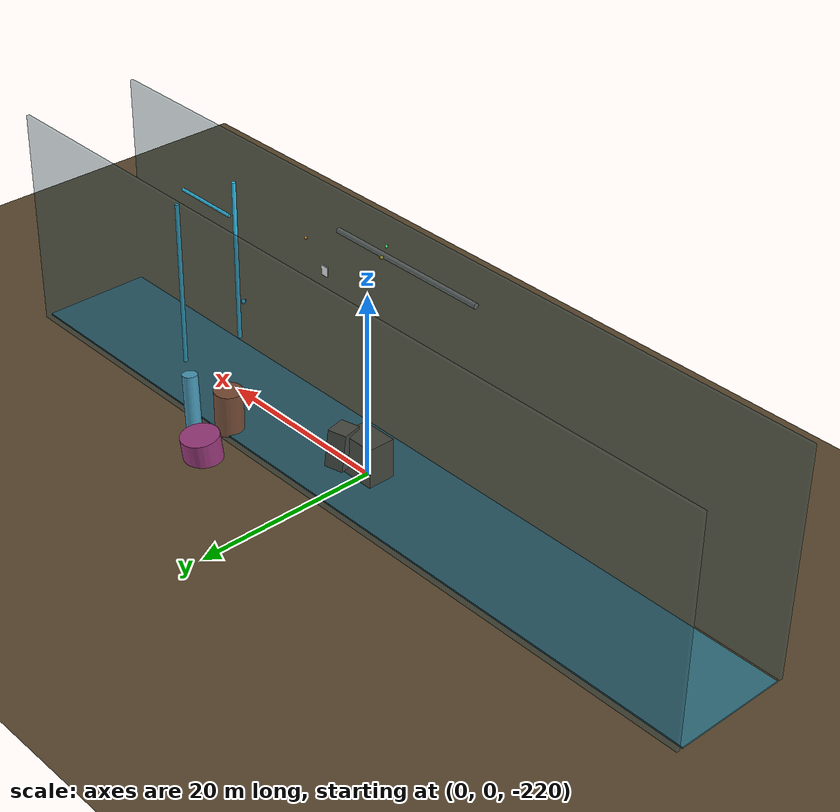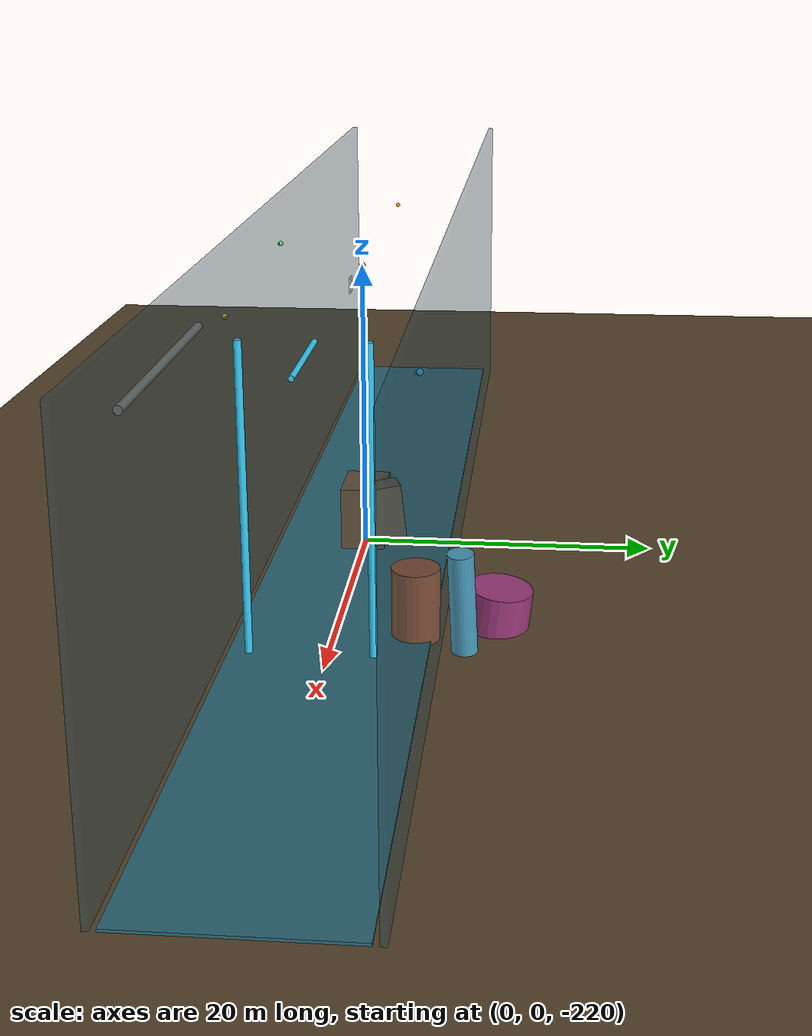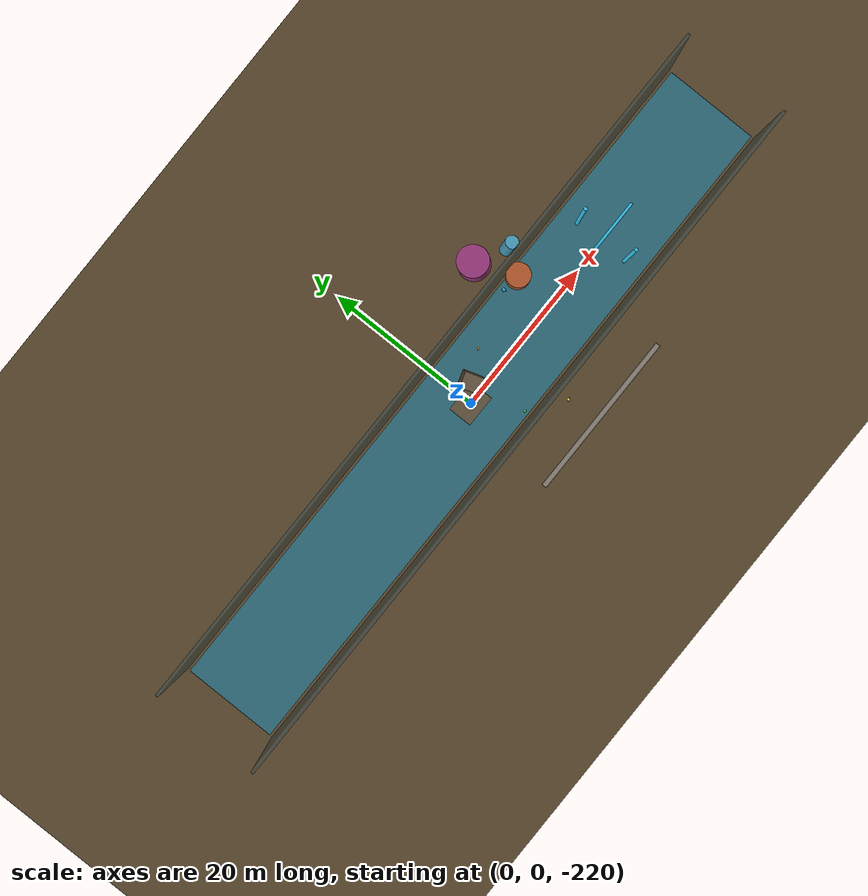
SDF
<sdf version="1.9">
 <world name="underwater_world">
  <model name="seafloor">
   <static>true</static>
   <link name="link">
    <pose>0 0 -220 0 0 0</pose>
    <collision name="collision">
     <geometry><plane><normal>0 0 1</normal><size>500 500</size></plane></geometry>
    </collision>
    <visual name="visual">
     <geometry><plane><normal>0 0 1</normal><size>500 500</size></plane></geometry>
     <material>
      <ambient>0.22 0.19 0.13 1</ambient>
      <diffuse>0.35 0.28 0.18 1</diffuse>
      <specular>0.03 0.03 0.02 1</specular>
     </material>
    </visual>
   </link>
  </model>
  <model name="navigation_lane">
   <static>true</static>
   <link name="link">
    <pose>0 0 -219.92 0 0 0</pose>
    <collision name="collision"><geometry><box><size>90 12 0.16</size></box></geometry></collision>
    <visual name="visual">
     <geometry><box><size>90 12 0.16</size></box></geometry>
     <material>
      <ambient>0.12 0.30 0.34 1</ambient>
      <diffuse>0.18 0.42 0.48 1</diffuse>
      <specular>0.05 0.08 0.08 1</specular>
     </material>
    </visual>
   </link>
  </model>
  <model name="guide_wall_port">
   <static>true</static>
   <pose>0 6.5 -208 0 0 0</pose>
   <link name="link">
    <collision name="collision"><geometry><box><size>90 0.35 24</size></box></geometry></collision>
    <visual name="visual">
     <geometry><box><size>90 0.35 24</size></box></geometry>
     <material>
      <ambient>0.16 0.24 0.28 0.40</ambient>
      <diffuse>0.20 0.34 0.38 0.40</diffuse>
      <specular>0.05 0.08 0.08 0.20</specular>
     </material>
     <transparency>0.55</transparency>
    </visual>
   </link>
  </model>
  <model name="guide_wall_starboard">
   <static>true</static>
   <pose>0 -6.5 -208 0 0 0</pose>
   <link name="link">
    <collision name="collision"><geometry><box><size>90 0.35 24</size></box></geometry></collision>
    <visual name="visual">
     <geometry><box><size>90 0.35 24</size></box></geometry>
     <material>
      <ambient>0.16 0.24 0.28 0.40</ambient>
      <diffuse>0.20 0.34 0.38 0.40</diffuse>
      <specular>0.05 0.08 0.08 0.20</specular>
     </material>
     <transparency>0.55</transparency>
    </visual>
   </link>
  </model>
  <model name="navigation_gate_exit">
   <static>true</static>
   <pose>24 0 -199 0 0 0</pose>
   <link name="link">
    <collision name="left_post">
     <pose>0 3.5 -9 0 0 0</pose>
     <geometry><cylinder><radius>0.22</radius><length>18</length></cylinder></geometry>
    </collision>
    <collision name="right_post">
     <pose>0 -3.5 -9 0 0 0</pose>
     <geometry><cylinder><radius>0.22</radius><length>18</length></cylinder></geometry>
    </collision>
    <collision name="top_beam">
     <pose>0 0 -1 0 1.5707963268 0</pose>
     <geometry><cylinder><radius>0.16</radius><length>7.4</length></cylinder></geometry>
    </collision>
    <visual name="left_post_visual">
     <pose>0 3.5 -9 0 0 0</pose>
     <geometry><cylinder><radius>0.22</radius><length>18</length></cylinder></geometry>
     <material><ambient>0.15 0.62 0.80 1</ambient><diffuse>0.20 0.78 0.95 1</diffuse></material>
    </visual>
    <visual name="right_post_visual">
     <pose>0 -3.5 -9 0 0 0</pose>
     <geometry><cylinder><radius>0.22</radius><length>18</length></cylinder></geometry>
     <material><ambient>0.15 0.62 0.80 1</ambient><diffuse>0.20 0.78 0.95 1</diffuse></material>
    </visual>
    <visual name="top_beam_visual">
     <pose>0 0 -1 0 1.5707963268 0</pose>
     <geometry><cylinder><radius>0.16</radius><length>7.4</length></cylinder></geometry>
     <material><ambient>0.15 0.62 0.80 1</ambient><diffuse>0.20 0.78 0.95 1</diffuse></material>
    </visual>
   </link>
  </model>
  <model name="rock_cluster_center">
   <static>true</static>
   <pose>0 0 -218 0 0 0</pose>
   <link name="link">
    <collision name="c1"><geometry><box><size>4 3 5</size></box></geometry></collision>
    <visual name="v1">
     <geometry><box><size>4 3 5</size></box></geometry>
     <material><ambient>0.25 0.22 0.18 1</ambient><diffuse>0.38 0.32 0.24 1</diffuse></material>
    </visual>
   </link>
  </model>
  <model name="rock_center_2">
   <static>true</static>
   <pose>2 1.5 -217 0.1 -0.05 0.3</pose>
   <link name="link">
    <collision name="c1"><geometry><box><size>2 2.5 4</size></box></geometry></collision>
    <visual name="v1">
     <geometry><box><size>2 2.5 4</size></box></geometry>
     <material><ambient>0.28 0.24 0.19 1</ambient><diffuse>0.40 0.34 0.26 1</diffuse></material>
    </visual>
   </link>
  </model>
  <model name="coral_reef_east_1">
   <static>true</static>
   <pose>15 5 -218 0 0 0.5</pose>
   <link name="link">
    <collision name="c1">
     <geometry><cylinder><radius>1.5</radius><length>5</length></cylinder></geometry>
    </collision>
    <visual name="v1">
     <geometry><cylinder><radius>1.5</radius><length>5</length></cylinder></geometry>
     <material>
      <ambient>0.55 0.25 0.12 1</ambient>
      <diffuse>0.72 0.35 0.18 1</diffuse>
      <specular>0.05 0.03 0.02 1</specular>
     </material>
    </visual>
   </link>
  </model>
  <model name="coral_reef_east_2">
   <static>true</static>
   <pose>17 8 -217 0.1 0 1.2</pose>
   <link name="link">
    <collision name="c1">
     <geometry><cylinder><radius>0.8</radius><length>7</length></cylinder></geometry>
    </collision>
    <visual name="v1">
     <geometry><cylinder><radius>0.8</radius><length>7</length></cylinder></geometry>
     <material><ambient>0.20 0.45 0.55 1</ambient><diffuse>0.28 0.60 0.72 1</diffuse></material>
    </visual>
   </link>
  </model>
  <model name="coral_reef_east_3">
   <static>true</static>
   <pose>13 10 -219 -0.05 0.1 0.8</pose>
   <link name="link">
    <collision name="c1">
     <geometry><cylinder><radius>2</radius><length>3</length></cylinder></geometry>
    </collision>
    <visual name="v1">
     <geometry><cylinder><radius>2</radius><length>3</length></cylinder></geometry>
     <material><ambient>0.45 0.15 0.35 1</ambient><diffuse>0.60 0.22 0.48 1</diffuse></material>
    </visual>
   </link>
  </model>
  <model name="pipeline_1">
   <static>true</static>
   <pose>8 -12 -205 0 1.5708 0</pose>
   <link name="link">
    <collision name="c1">
     <geometry><cylinder><radius>0.3</radius><length>20</length></cylinder></geometry>
    </collision>
    <visual name="v1">
     <geometry><cylinder><radius>0.3</radius><length>20</length></cylinder></geometry>
     <material>
      <ambient>0.40 0.38 0.35 1</ambient>
      <diffuse>0.55 0.52 0.48 1</diffuse>
      <specular>0.20 0.20 0.18 1</specular>
     </material>
    </visual>
   </link>
  </model>
  <model name="inspection_panel_1">
   <static>true</static>
   <pose>6 0 -200 0 1.5708 0</pose>
   <link name="link">
    <collision name="c1"><geometry><box><size>1 0.1 0.8</size></box></geometry></collision>
    <visual name="v1">
     <geometry><box><size>1 0.1 0.8</size></box></geometry>
     <material>
      <ambient>0.80 0.82 0.85 1</ambient>
      <diffuse>0.88 0.90 0.92 1</diffuse>
      <specular>0.50 0.50 0.50 1</specular>
     </material>
    </visual>
   </link>
  </model>
  <model name="fish_0">
   <static>false</static>
   <pose>5 3 -195 0 0 0</pose>
   <link name="body">
    <inertial><mass>0.2</mass></inertial>
    <visual name="fish_body">
     <geometry><sphere><radius>0.12</radius></sphere></geometry>
     <material>
      <ambient>0.90 0.55 0.10 1</ambient>
      <diffuse>1.00 0.65 0.15 1</diffuse>
      <specular>0.30 0.20 0.05 1</specular>
     </material>
    </visual>
    <visual name="fish_tail">
     <pose>-0.14 0 0 0 0 0</pose>
     <geometry><box><size>0.08 0.06 0.10</size></box></geometry>
     <material><ambient>0.85 0.45 0.08 1</ambient><diffuse>0.95 0.55 0.12 1</diffuse></material>
    </visual>
   </link>
   <plugin filename="gz-sim-trajectory-follower-system" name="gz::sim::systems::TrajectoryFollower">
    <link_name>body</link_name>
    <loop>true</loop>
    <force>1.2</force>
    <torque>1.0</torque>
    <waypoints>
     <waypoint>2.5 1.0</waypoint>
     <waypoint>7.5 2.5</waypoint>
     <waypoint>6.5 6.0</waypoint>
     <waypoint>2.5 4.5</waypoint>
    </waypoints>
   </plugin>
  </model>
  <model name="fish_2">
   <static>false</static>
   <pose>3 -5 -198 0 0 2.5</pose>
   <link name="body">
    <inertial><mass>0.3</mass></inertial>
    <visual name="fish_body">
     <geometry><sphere><radius>0.15</radius></sphere></geometry>
     <material>
      <ambient>0.20 0.75 0.35 1</ambient>
      <diffuse>0.28 0.90 0.45 1</diffuse>
      <specular>0.08 0.30 0.15 1</specular>
     </material>
    </visual>
    <visual name="fish_tail">
     <pose>-0.17 0 0 0 0 0</pose>
     <geometry><box><size>0.10 0.07 0.12</size></box></geometry>
     <material><ambient>0.15 0.60 0.28 1</ambient><diffuse>0.22 0.75 0.38 1</diffuse></material>
    </visual>
   </link>
   <plugin filename="gz-sim-trajectory-follower-system" name="gz::sim::systems::TrajectoryFollower">
    <link_name>body</link_name>
    <loop>true</loop>
    <force>1.1</force>
    <torque>1.0</torque>
    <waypoints>
     <waypoint>1.0 -7.5</waypoint>
     <waypoint>6.5 -6.0</waypoint>
     <waypoint>7.0 -2.5</waypoint>
     <waypoint>2.0 -2.0</waypoint>
    </waypoints>
   </plugin>
  </model>
  <model name="fish_4">
   <static>false</static>
   <pose>7 -8 -202 0 0 3.5</pose>
   <link name="body">
    <inertial><mass>0.5</mass></inertial>
    <visual name="fish_body">
     <geometry><sphere><radius>0.18</radius></sphere></geometry>
     <material>
      <ambient>0.70 0.65 0.15 1</ambient>
      <diffuse>0.88 0.80 0.20 1</diffuse>
      <specular>0.30 0.28 0.05 1</specular>
     </material>
    </visual>
    <visual name="fish_tail">
     <pose>-0.20 0 0 0 0 0</pose>
     <geometry><box><size>0.12 0.08 0.14</size></box></geometry>
     <material><ambient>0.58 0.52 0.12 1</ambient><diffuse>0.72 0.66 0.16 1</diffuse></material>
    </visual>
   </link>
   <plugin filename="gz-sim-trajectory-follower-system" name="gz::sim::systems::TrajectoryFollower">
    <link_name>body</link_name>
    <loop>true</loop>
    <force>1.5</force>
    <torque>1.2</torque>
    <waypoints>
     <waypoint>4.5 -10.5</waypoint>
     <waypoint>11.0 -10.0</waypoint>
     <waypoint>10.5 -5.0</waypoint>
     <waypoint>5.0 -5.5</waypoint>
    </waypoints>
   </plugin>
  </model>
  <model name="fish_6">
   <static>false</static>
   <pose>12 5 -204 0 0 1.8</pose>
   <link name="body">
    <inertial><mass>0.8</mass></inertial>
    <visual name="fish_body">
     <geometry><sphere><radius>0.22</radius></sphere></geometry>
     <material>
      <ambient>0.15 0.50 0.68 1</ambient>
      <diffuse>0.20 0.65 0.85 1</diffuse>
      <specular>0.06 0.22 0.30 1</specular>
     </material>
    </visual>
    <visual name="fish_tail">
     <pose>-0.25 0 0 0 0 0</pose>
     <geometry><box><size>0.14 0.10 0.17</size></box></geometry>
     <material><ambient>0.12 0.40 0.55 1</ambient><diffuse>0.16 0.52 0.70 1</diffuse></material>
    </visual>
   </link>
   <plugin filename="gz-sim-trajectory-follower-system" name="gz::sim::systems::TrajectoryFollower">
    <link_name>body</link_name>
    <loop>true</loop>
    <force>1.8</force>
    <torque>1.3</torque>
    <waypoints>
     <waypoint>9.0 2.0</waypoint>
     <waypoint>15.5 2.5</waypoint>
     <waypoint>16.0 8.0</waypoint>
     <waypoint>10.0 8.5</waypoint>
    </waypoints>
   </plugin>
  </model>
  <model name="origin_marker">
   <static>true</static>
   <pose>0 0 -200 0 0 0</pose>
   <link name="link">
    <visual name="sphere">
     <geometry><sphere><radius>0.20</radius></sphere></geometry>
     <material>
      <ambient>0.90 0.18 0.08 1</ambient>
      <diffuse>1.00 0.25 0.12 1</diffuse>
      <specular>0.30 0.08 0.04 1</specular>
     </material>
    </visual>
   </link>
  </model>
 </world>
</sdf>
